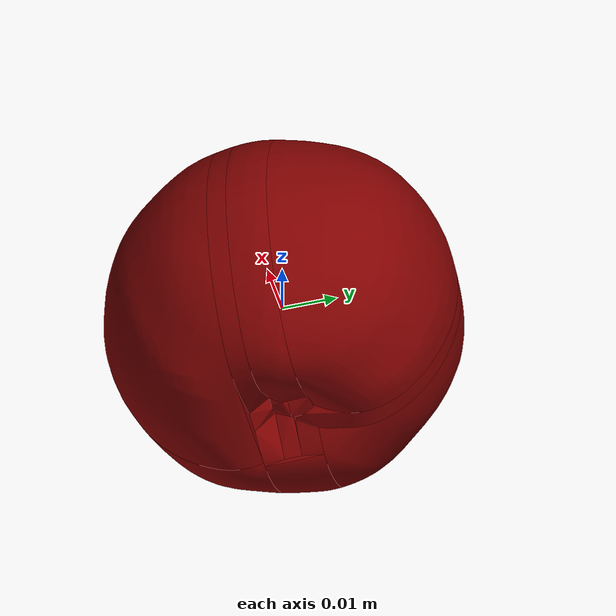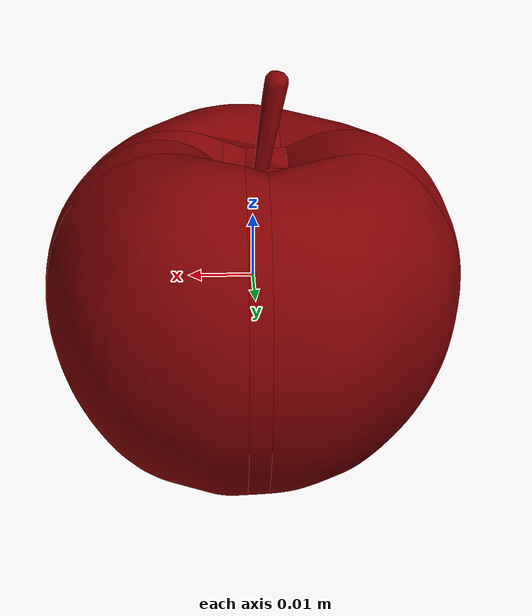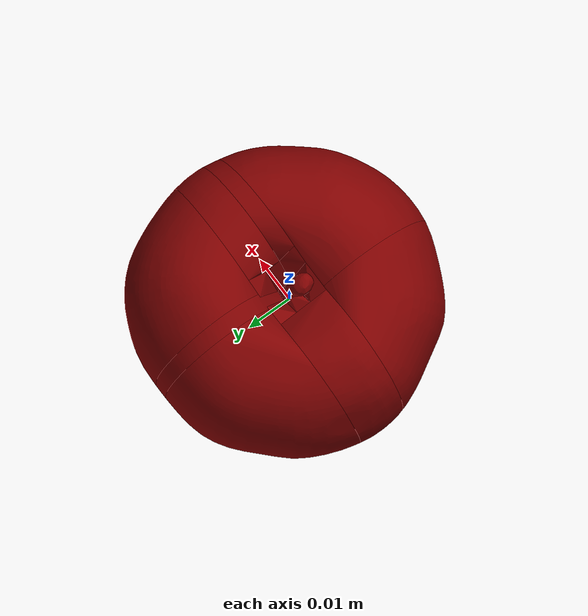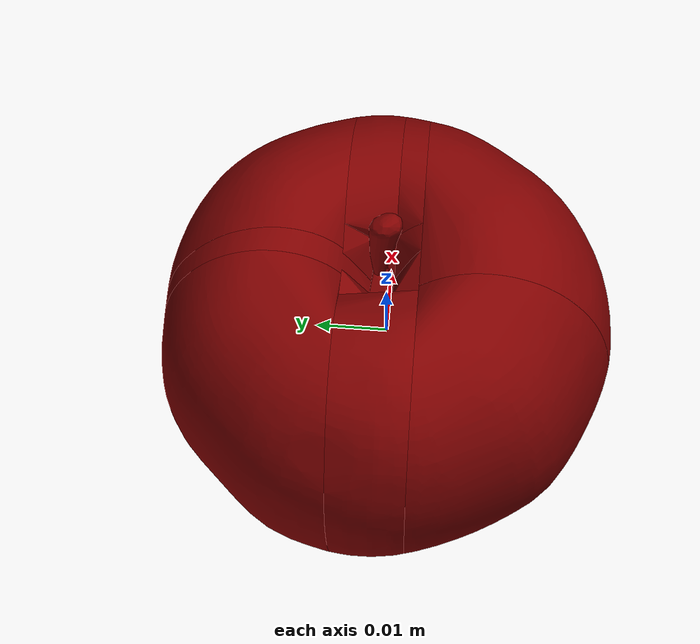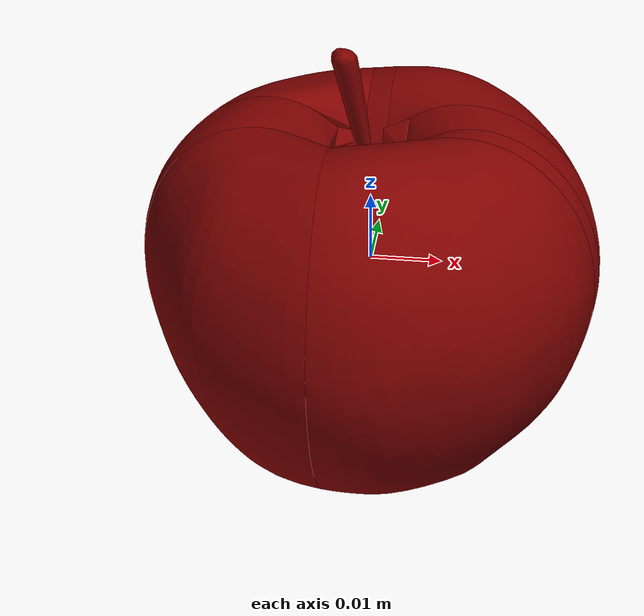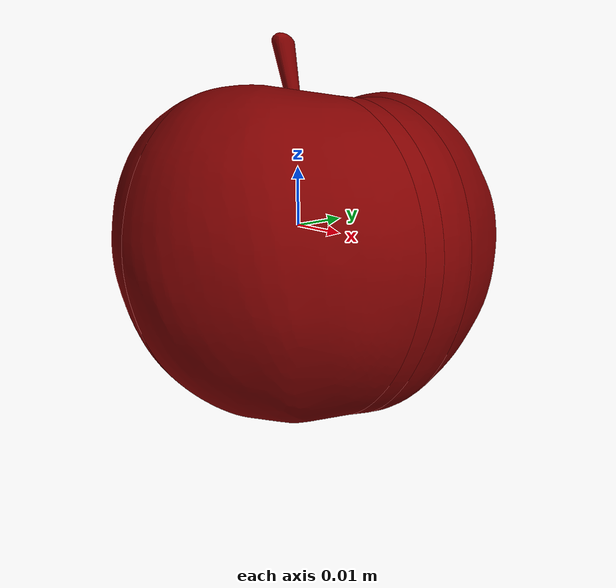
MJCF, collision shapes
<mujoco model="apple_41">
  <asset>
    <mesh file="visual/model_normalized_0.obj" name="model_normalized_0_vis" scale="0.063750000000000001 0.063750000000000001 0.063750000000000001" refquat="1.0 0.0 0.0 0.0" />
    <texture type="2d" name="image0" file="visual/image0.png" />
    <material name="defaultMat.011" texture="image0" specular="0.5" shininess="0.25" />
    <mesh file="collision/collision_mesh_collision_0.obj" name="apple_collision_mesh_0" scale="0.063750000000000001 0.063750000000000001 0.063750000000000001" refquat="1.0 0.0 0.0 0.0" />
    <mesh file="collision/collision_mesh_collision_1.obj" name="apple_collision_mesh_1" scale="0.063750000000000001 0.063750000000000001 0.063750000000000001" refquat="1.0 0.0 0.0 0.0" />
    <mesh file="collision/collision_mesh_collision_2.obj" name="apple_collision_mesh_2" scale="0.063750000000000001 0.063750000000000001 0.063750000000000001" refquat="1.0 0.0 0.0 0.0" />
    <mesh file="collision/collision_mesh_collision_3.obj" name="apple_collision_mesh_3" scale="0.063750000000000001 0.063750000000000001 0.063750000000000001" refquat="1.0 0.0 0.0 0.0" />
    <mesh file="collision/collision_mesh_collision_4.obj" name="apple_collision_mesh_4" scale="0.063750000000000001 0.063750000000000001 0.063750000000000001" refquat="1.0 0.0 0.0 0.0" />
    <mesh file="collision/collision_mesh_collision_5.obj" name="apple_collision_mesh_5" scale="0.063750000000000001 0.063750000000000001 0.063750000000000001" refquat="1.0 0.0 0.0 0.0" />
    <mesh file="collision/collision_mesh_collision_6.obj" name="apple_collision_mesh_6" scale="0.063750000000000001 0.063750000000000001 0.063750000000000001" refquat="1.0 0.0 0.0 0.0" />
    <mesh file="collision/collision_mesh_collision_7.obj" name="apple_collision_mesh_7" scale="0.063750000000000001 0.063750000000000001 0.063750000000000001" refquat="1.0 0.0 0.0 0.0" />
    <mesh file="collision/collision_mesh_collision_8.obj" name="apple_collision_mesh_8" scale="0.063750000000000001 0.063750000000000001 0.063750000000000001" refquat="1.0 0.0 0.0 0.0" />
    <mesh file="collision/collision_mesh_collision_9.obj" name="apple_collision_mesh_9" scale="0.063750000000000001 0.063750000000000001 0.063750000000000001" refquat="1.0 0.0 0.0 0.0" />
    <mesh file="collision/collision_mesh_collision_10.obj" name="apple_collision_mesh_10" scale="0.063750000000000001 0.063750000000000001 0.063750000000000001" refquat="1.0 0.0 0.0 0.0" />
    <mesh file="collision/collision_mesh_collision_11.obj" name="apple_collision_mesh_11" scale="0.063750000000000001 0.063750000000000001 0.063750000000000001" refquat="1.0 0.0 0.0 0.0" />
    <mesh file="collision/collision_mesh_collision_12.obj" name="apple_collision_mesh_12" scale="0.063750000000000001 0.063750000000000001 0.063750000000000001" refquat="1.0 0.0 0.0 0.0" />
    <mesh file="collision/collision_mesh_collision_13.obj" name="apple_collision_mesh_13" scale="0.063750000000000001 0.063750000000000001 0.063750000000000001" refquat="1.0 0.0 0.0 0.0" />
    <mesh file="collision/collision_mesh_collision_14.obj" name="apple_collision_mesh_14" scale="0.063750000000000001 0.063750000000000001 0.063750000000000001" refquat="1.0 0.0 0.0 0.0" />
    <mesh file="collision/collision_mesh_collision_15.obj" name="apple_collision_mesh_15" scale="0.063750000000000001 0.063750000000000001 0.063750000000000001" refquat="1.0 0.0 0.0 0.0" />
  </asset>
  <default>
    <default class="region">
      <geom group="1" conaffinity="0" contype="0" rgba="0 1 0 0" />
    </default>
    <default class="collision">
      <geom group="0" rgba="0.5 0 0 0.5" density="1000.0" />
    </default>
  </default>
  <worldbody>
    <body>
      <body name="object">
        <geom solimp="0.998 0.998 0.001" solref="0.001 1" density="100" friction="0.95 0.3 0.1" type="mesh" mesh="model_normalized_0_vis" conaffinity="0" contype="0" group="1" material="defaultMat.011" />
        <geom class="region" name="reg_bbox" type="box" pos="3.1996124999968125e-06 5.6007562499980909e-06 -1.8248756250000833e-05" size="0.032207634112500001 0.032053050881250003 0.03209551921875" />
        <geom mesh="apple_collision_mesh_0" type="mesh" class="collision" />
        <geom mesh="apple_collision_mesh_1" type="mesh" class="collision" />
        <geom mesh="apple_collision_mesh_2" type="mesh" class="collision" />
        <geom mesh="apple_collision_mesh_3" type="mesh" class="collision" />
        <geom mesh="apple_collision_mesh_4" type="mesh" class="collision" />
        <geom mesh="apple_collision_mesh_5" type="mesh" class="collision" />
        <geom mesh="apple_collision_mesh_6" type="mesh" class="collision" />
        <geom mesh="apple_collision_mesh_7" type="mesh" class="collision" />
        <geom mesh="apple_collision_mesh_8" type="mesh" class="collision" />
        <geom mesh="apple_collision_mesh_9" type="mesh" class="collision" />
        <geom mesh="apple_collision_mesh_10" type="mesh" class="collision" />
        <geom mesh="apple_collision_mesh_11" type="mesh" class="collision" />
        <geom mesh="apple_collision_mesh_12" type="mesh" class="collision" />
        <geom mesh="apple_collision_mesh_13" type="mesh" class="collision" />
        <geom mesh="apple_collision_mesh_14" type="mesh" class="collision" />
        <geom mesh="apple_collision_mesh_15" type="mesh" class="collision" />
      </body>
    <site name="bottom_site" pos="0 0 -0.032113768588425545" size="0.005" rgba="0 0 0 0" /><site name="top_site" pos="0 0 0.032077270747357139" size="0.005" rgba="0 0 0 0" /><site name="horizontal_radius_site" pos="0.033469874487796654 0 0" size="0.005" rgba="0 0 0 0" /></body>
  </worldbody>
</mujoco>
